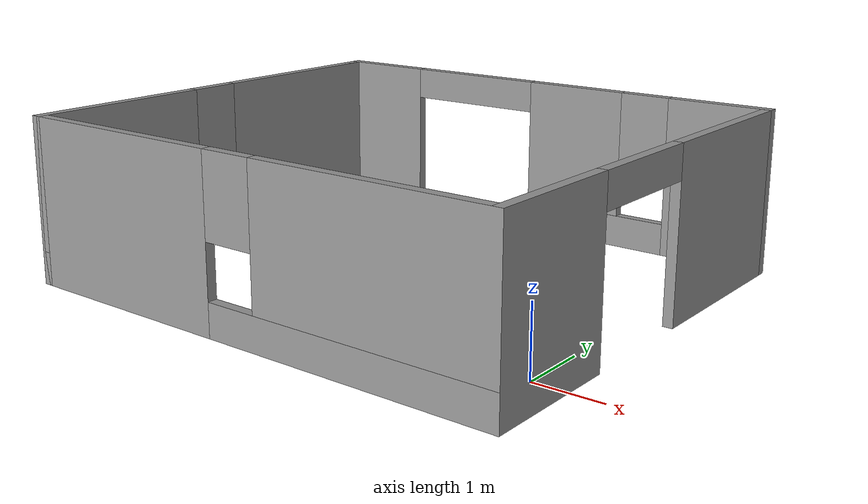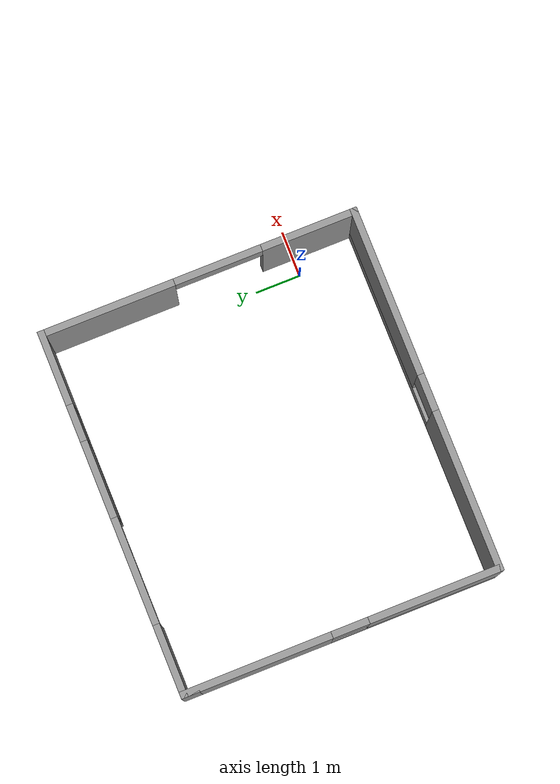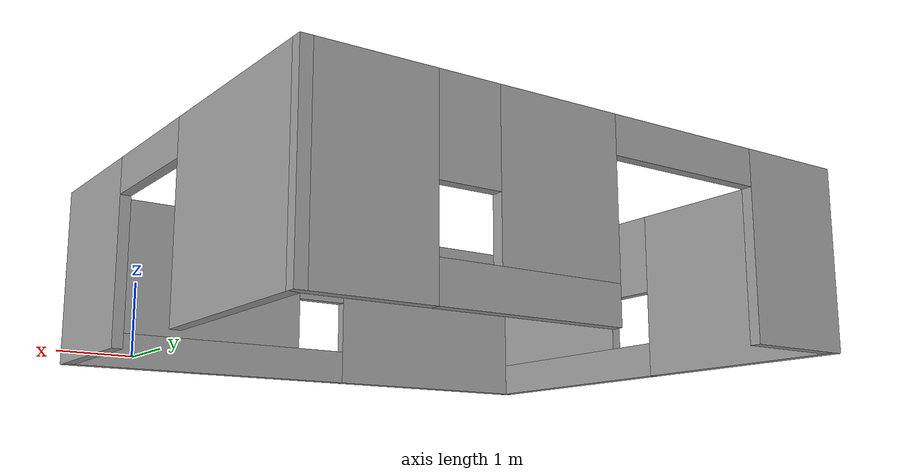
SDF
<?xml version='1.0'?>
<sdf version='1.6'>
  <model name='house3'>
    <pose frame=''>-3.47516 2.08009 0 0 -0 0</pose>
    <link name='Wall_3'>
      <pose frame=''>-0 3.425 0 0 -0 3.14159</pose>
      <visual name='Wall_3_Visual_0'>
        <pose frame=''>-3.18921 0 1.25 0 -0 0</pose>
        <geometry>
          <box>
            <size>1.62157 0.15 2.5</size>
          </box>
        </geometry>
        <material>
          <script>
            <uri>file://media/materials/scripts/gazebo.material</uri>
            <name>Gazebo/Grey</name>
          </script>
          <ambient>1 1 1 1</ambient>
        </material>
        <meta>
          <layer>0</layer>
        </meta>
      </visual>
      <collision name='Wall_3_Collision_0'>
        <geometry>
          <box>
            <size>1.62157 0.15 2.5</size>
          </box>
        </geometry>
        <pose frame=''>-3.18921 0 1.25 0 -0 0</pose>
      </collision>
      <visual name='Wall_3_Visual_1'>
        <pose frame=''>3.20799 0 1.25 0 -0 0</pose>
        <geometry>
          <box>
            <size>1.58401 0.15 2.5</size>
          </box>
        </geometry>
        <material>
          <script>
            <uri>file://media/materials/scripts/gazebo.material</uri>
            <name>Gazebo/Grey</name>
          </script>
          <ambient>1 1 1 1</ambient>
        </material>
        <meta>
          <layer>0</layer>
        </meta>
      </visual>
      <collision name='Wall_3_Collision_1'>
        <geometry>
          <box>
            <size>1.58401 0.15 2.5</size>
          </box>
        </geometry>
        <pose frame=''>3.20799 0 1.25 0 -0 0</pose>
      </collision>
      <visual name='Wall_3_Visual_2'>
        <pose frame=''>-1.13919 0 0.25 0 -0 0</pose>
        <geometry>
          <box>
            <size>2.47847 0.15 0.5</size>
          </box>
        </geometry>
        <material>
          <script>
            <uri>file://media/materials/scripts/gazebo.material</uri>
            <name>Gazebo/Grey</name>
          </script>
          <ambient>1 1 1 1</ambient>
        </material>
        <meta>
          <layer>0</layer>
        </meta>
      </visual>
      <collision name='Wall_3_Collision_2'>
        <geometry>
          <box>
            <size>2.47847 0.15 0.5</size>
          </box>
        </geometry>
        <pose frame=''>-1.13919 0 0.25 0 -0 0</pose>
      </collision>
      <visual name='Wall_3_Visual_3'>
        <pose frame=''>-0.739193 0 1.5 0 -0 0</pose>
        <geometry>
          <box>
            <size>1.67847 0.15 2</size>
          </box>
        </geometry>
        <material>
          <script>
            <uri>file://media/materials/scripts/gazebo.material</uri>
            <name>Gazebo/Grey</name>
          </script>
          <ambient>1 1 1 1</ambient>
        </material>
        <meta>
          <layer>0</layer>
        </meta>
      </visual>
      <collision name='Wall_3_Collision_3'>
        <geometry>
          <box>
            <size>1.67847 0.15 2</size>
          </box>
        </geometry>
        <pose frame=''>-0.739193 0 1.5 0 -0 0</pose>
      </collision>
      <visual name='Wall_3_Visual_4'>
        <pose frame=''>-1.97843 0 1.9 0 -0 0</pose>
        <geometry>
          <box>
            <size>0.8 0.15 1.2</size>
          </box>
        </geometry>
        <material>
          <script>
            <uri>file://media/materials/scripts/gazebo.material</uri>
            <name>Gazebo/Grey</name>
          </script>
          <ambient>1 1 1 1</ambient>
        </material>
        <meta>
          <layer>0</layer>
        </meta>
      </visual>
      <collision name='Wall_3_Collision_4'>
        <geometry>
          <box>
            <size>0.8 0.15 1.2</size>
          </box>
        </geometry>
        <pose frame=''>-1.97843 0 1.9 0 -0 0</pose>
      </collision>
      <visual name='Wall_3_Visual_5'>
        <pose frame=''>1.25802 0 2.25 0 -0 0</pose>
        <geometry>
          <box>
            <size>2.31595 0.15 0.5</size>
          </box>
        </geometry>
        <material>
          <script>
            <uri>file://media/materials/scripts/gazebo.material</uri>
            <name>Gazebo/Grey</name>
          </script>
          <ambient>1 1 1 1</ambient>
        </material>
        <meta>
          <layer>0</layer>
        </meta>
      </visual>
      <collision name='Wall_3_Collision_5'>
        <geometry>
          <box>
            <size>2.31595 0.15 0.5</size>
          </box>
        </geometry>
        <pose frame=''>1.25802 0 2.25 0 -0 0</pose>
      </collision>
    </link>
    <link name='Wall_4'>
      <collision name='Wall_4_Collision'>
        <geometry>
          <box>
            <size>0.4 0.15 2.5</size>
          </box>
        </geometry>
        <pose frame=''>0 0 1.25 0 -0 0</pose>
      </collision>
      <visual name='Wall_4_Visual'>
        <pose frame=''>0 0 1.25 0 -0 0</pose>
        <geometry>
          <box>
            <size>0.4 0.15 2.5</size>
          </box>
        </geometry>
        <material>
          <script>
            <uri>file://media/materials/scripts/gazebo.material</uri>
            <name>Gazebo/Grey</name>
          </script>
          <ambient>1 1 1 1</ambient>
        </material>
        <meta>
          <layer>0</layer>
        </meta>
      </visual>
      <pose frame=''>-3.925 3.3 0 0 -0 -1.5708</pose>
    </link>
    <link name='Wall_6'>
      <pose frame=''>-3.925 0 0 0 -0 -1.5708</pose>
      <visual name='Wall_6_Visual_0'>
        <pose frame=''>-1.85783 0 1.25 0 -0 0</pose>
        <geometry>
          <box>
            <size>3.28434 0.15 2.5</size>
          </box>
        </geometry>
        <material>
          <script>
            <uri>file://media/materials/scripts/gazebo.material</uri>
            <name>Gazebo/Grey</name>
          </script>
          <ambient>1 1 1 1</ambient>
        </material>
        <meta>
          <layer>0</layer>
        </meta>
      </visual>
      <collision name='Wall_6_Collision_0'>
        <geometry>
          <box>
            <size>3.28434 0.15 2.5</size>
          </box>
        </geometry>
        <pose frame=''>-1.85783 0 1.25 0 -0 0</pose>
      </collision>
      <visual name='Wall_6_Visual_1'>
        <pose frame=''>1.64217 0 0.25 0 -0 0</pose>
        <geometry>
          <box>
            <size>3.71566 0.15 0.5</size>
          </box>
        </geometry>
        <material>
          <script>
            <uri>file://media/materials/scripts/gazebo.material</uri>
            <name>Gazebo/Grey</name>
          </script>
          <ambient>1 1 1 1</ambient>
        </material>
        <meta>
          <layer>0</layer>
        </meta>
      </visual>
      <collision name='Wall_6_Collision_1'>
        <geometry>
          <box>
            <size>3.71566 0.15 0.5</size>
          </box>
        </geometry>
        <pose frame=''>1.64217 0 0.25 0 -0 0</pose>
      </collision>
      <visual name='Wall_6_Visual_2'>
        <pose frame=''>2.04217 0 1.5 0 -0 0</pose>
        <geometry>
          <box>
            <size>2.91566 0.15 2</size>
          </box>
        </geometry>
        <material>
          <script>
            <uri>file://media/materials/scripts/gazebo.material</uri>
            <name>Gazebo/Grey</name>
          </script>
          <ambient>1 1 1 1</ambient>
        </material>
        <meta>
          <layer>0</layer>
        </meta>
      </visual>
      <collision name='Wall_6_Collision_2'>
        <geometry>
          <box>
            <size>2.91566 0.15 2</size>
          </box>
        </geometry>
        <pose frame=''>2.04217 0 1.5 0 -0 0</pose>
      </collision>
      <visual name='Wall_6_Visual_3'>
        <pose frame=''>0.18434 0 1.9 0 -0 0</pose>
        <geometry>
          <box>
            <size>0.8 0.15 1.2</size>
          </box>
        </geometry>
        <material>
          <script>
            <uri>file://media/materials/scripts/gazebo.material</uri>
            <name>Gazebo/Grey</name>
          </script>
          <ambient>1 1 1 1</ambient>
        </material>
        <meta>
          <layer>0</layer>
        </meta>
      </visual>
      <collision name='Wall_6_Collision_3'>
        <geometry>
          <box>
            <size>0.8 0.15 1.2</size>
          </box>
        </geometry>
        <pose frame=''>0.18434 0 1.9 0 -0 0</pose>
      </collision>
    </link>
    <link name='Wall_7'>
      <pose frame=''>-0 -3.425 0 0 -0 0</pose>
      <visual name='Wall_7_Visual_0'>
        <pose frame=''>-2.2424 0 1.25 0 -0 0</pose>
        <geometry>
          <box>
            <size>3.51519 0.15 2.5</size>
          </box>
        </geometry>
        <material>
          <script>
            <uri>file://media/materials/scripts/gazebo.material</uri>
            <name>Gazebo/Grey</name>
          </script>
          <ambient>1 1 1 1</ambient>
        </material>
        <meta>
          <layer>0</layer>
        </meta>
      </visual>
      <collision name='Wall_7_Collision_0'>
        <geometry>
          <box>
            <size>3.51519 0.15 2.5</size>
          </box>
        </geometry>
        <pose frame=''>-2.2424 0 1.25 0 -0 0</pose>
      </collision>
      <visual name='Wall_7_Visual_1'>
        <pose frame=''>1.7576 0 0.25 0 -0 0</pose>
        <geometry>
          <box>
            <size>4.4848 0.15 0.5</size>
          </box>
        </geometry>
        <material>
          <script>
            <uri>file://media/materials/scripts/gazebo.material</uri>
            <name>Gazebo/Grey</name>
          </script>
          <ambient>1 1 1 1</ambient>
        </material>
        <meta>
          <layer>0</layer>
        </meta>
      </visual>
      <collision name='Wall_7_Collision_1'>
        <geometry>
          <box>
            <size>4.4848 0.15 0.5</size>
          </box>
        </geometry>
        <pose frame=''>1.7576 0 0.25 0 -0 0</pose>
      </collision>
      <visual name='Wall_7_Visual_2'>
        <pose frame=''>2.1576 0 1.5 0 -0 0</pose>
        <geometry>
          <box>
            <size>3.6848 0.15 2</size>
          </box>
        </geometry>
        <material>
          <script>
            <uri>file://media/materials/scripts/gazebo.material</uri>
            <name>Gazebo/Grey</name>
          </script>
          <ambient>1 1 1 1</ambient>
        </material>
        <meta>
          <layer>0</layer>
        </meta>
      </visual>
      <collision name='Wall_7_Collision_2'>
        <geometry>
          <box>
            <size>3.6848 0.15 2</size>
          </box>
        </geometry>
        <pose frame=''>2.1576 0 1.5 0 -0 0</pose>
      </collision>
      <visual name='Wall_7_Visual_3'>
        <pose frame=''>-0.084805 0 1.9 0 -0 0</pose>
        <geometry>
          <box>
            <size>0.8 0.15 1.2</size>
          </box>
        </geometry>
        <material>
          <script>
            <uri>file://media/materials/scripts/gazebo.material</uri>
            <name>Gazebo/Grey</name>
          </script>
          <ambient>1 1 1 1</ambient>
        </material>
        <meta>
          <layer>0</layer>
        </meta>
      </visual>
      <collision name='Wall_7_Collision_3'>
        <geometry>
          <box>
            <size>0.8 0.15 1.2</size>
          </box>
        </geometry>
        <pose frame=''>-0.084805 0 1.9 0 -0 0</pose>
      </collision>
    </link>
    <link name='Wall_8'>
      <pose frame=''>3.925 0 0 0 -0 1.5708</pose>
      <visual name='Wall_8_Visual_0'>
        <pose frame=''>-2.44138 0 1.25 0 -0 0</pose>
        <geometry>
          <box>
            <size>2.11723 0.15 2.5</size>
          </box>
        </geometry>
        <material>
          <script>
            <uri>file://media/materials/scripts/gazebo.material</uri>
            <name>Gazebo/Grey</name>
          </script>
          <ambient>1 1 1 1</ambient>
        </material>
        <meta>
          <layer>0</layer>
        </meta>
      </visual>
      <collision name='Wall_8_Collision_0'>
        <geometry>
          <box>
            <size>2.11723 0.15 2.5</size>
          </box>
        </geometry>
        <pose frame=''>-2.44138 0 1.25 0 -0 0</pose>
      </collision>
      <visual name='Wall_8_Visual_1'>
        <pose frame=''>2.01431 0 1.25 0 -0 0</pose>
        <geometry>
          <box>
            <size>2.97138 0.15 2.5</size>
          </box>
        </geometry>
        <material>
          <script>
            <uri>file://media/materials/scripts/gazebo.material</uri>
            <name>Gazebo/Grey</name>
          </script>
          <ambient>1 1 1 1</ambient>
        </material>
        <meta>
          <layer>0</layer>
        </meta>
      </visual>
      <collision name='Wall_8_Collision_1'>
        <geometry>
          <box>
            <size>2.97138 0.15 2.5</size>
          </box>
        </geometry>
        <pose frame=''>2.01431 0 1.25 0 -0 0</pose>
      </collision>
      <visual name='Wall_8_Visual_2'>
        <pose frame=''>-0.427073 0 2.25 0 -0 0</pose>
        <geometry>
          <box>
            <size>1.91139 0.15 0.5</size>
          </box>
        </geometry>
        <material>
          <script>
            <uri>file://media/materials/scripts/gazebo.material</uri>
            <name>Gazebo/Grey</name>
          </script>
          <ambient>1 1 1 1</ambient>
        </material>
        <meta>
          <layer>0</layer>
        </meta>
      </visual>
      <collision name='Wall_8_Collision_2'>
        <geometry>
          <box>
            <size>1.91139 0.15 0.5</size>
          </box>
        </geometry>
        <pose frame=''>-0.427073 0 2.25 0 -0 0</pose>
      </collision>
    </link>
    <static>1</static>
  </model>
</sdf>
